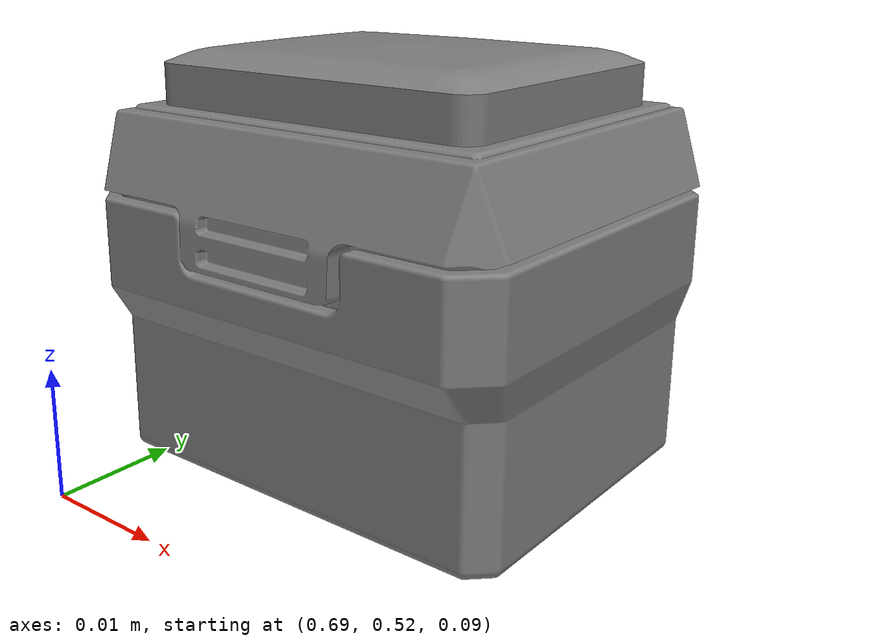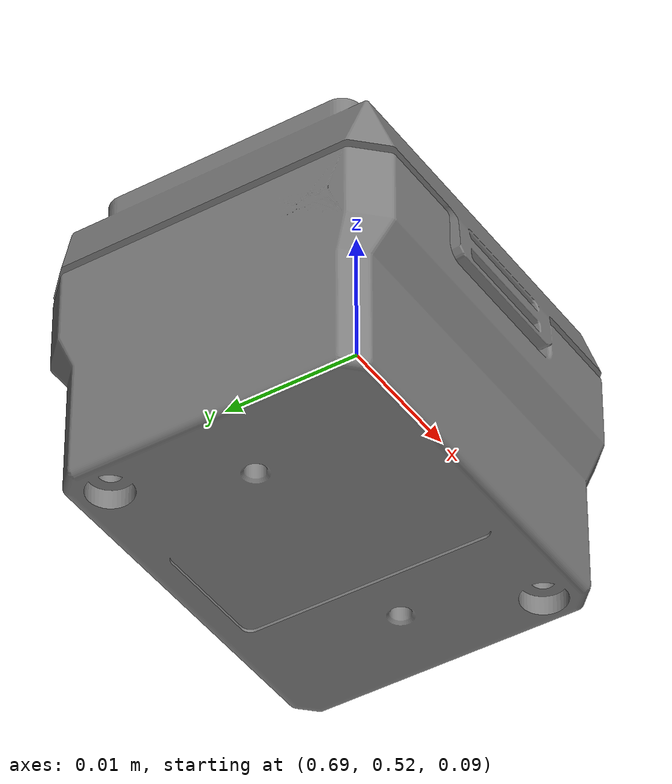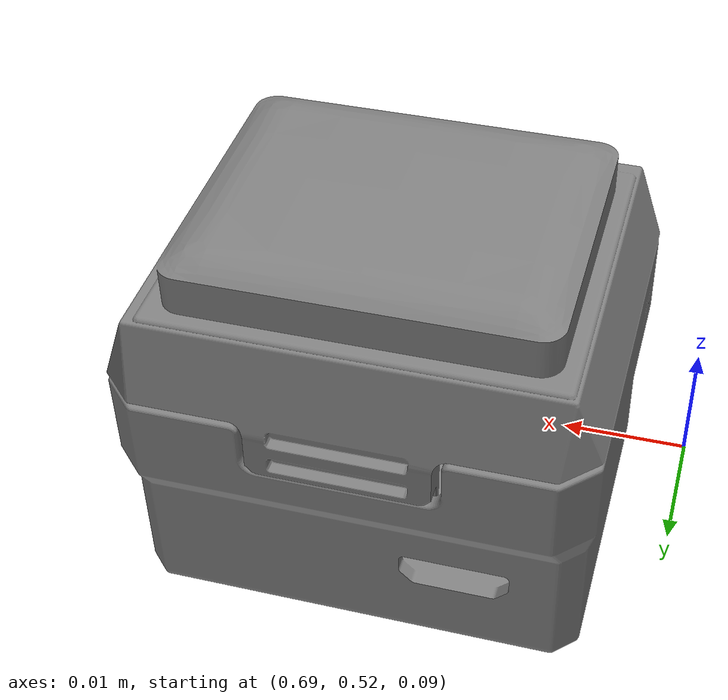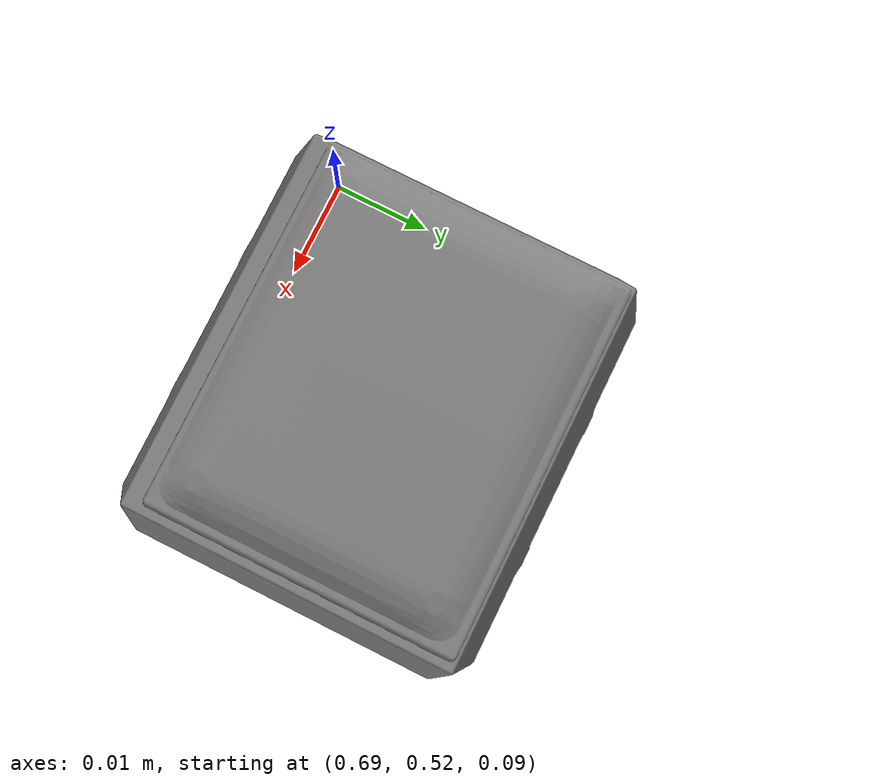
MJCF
<mujoco model="gelsight_mini">

	<asset>
		<include file="../assets/gelsight_mini/gelsight_mini_assets.xml" />
	</asset>

	<worldbody>
		<body name="gelsight_mini" pos="0.71 0.535 0.1" quat="1 1 0 0">
			<geom name="gelsight_mini" type="mesh" mesh="gelsight_mini" condim="6" mass="0.3"
				solimp="0.09 0.95 0.001 0.5 2" solref="1 1"/>
			<camera name="gelsight_mini" mode="fixed" fovy="38" quat="1 1 0 0" pos="0.001 -0.01 0" />
		</body>
	</worldbody>
</mujoco>

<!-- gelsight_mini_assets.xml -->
<mujocoinclude>
    <mesh name="gelsight_mini" file="../assets/gelsight_mini/assets/gsmini_shell.stl"
        scale="0.001 0.001 0.001" />
</mujocoinclude>
